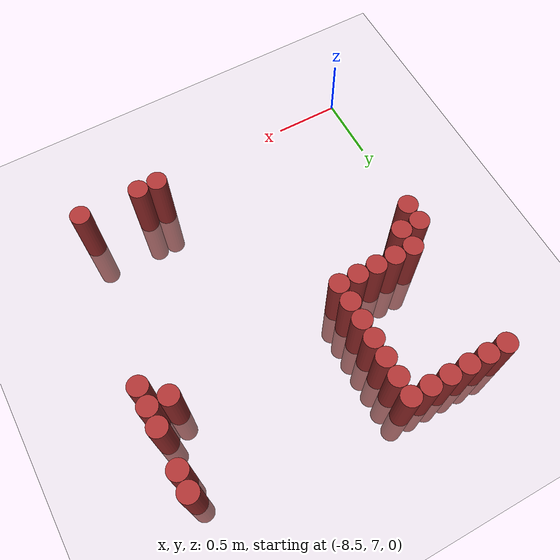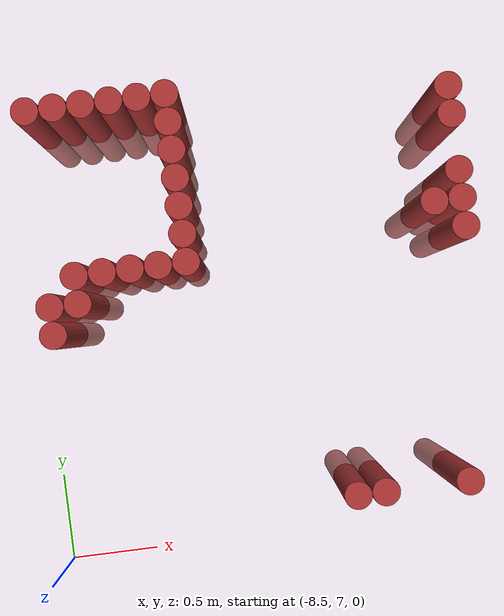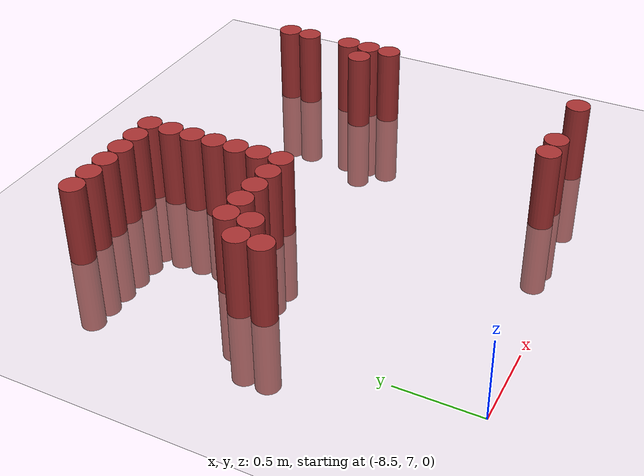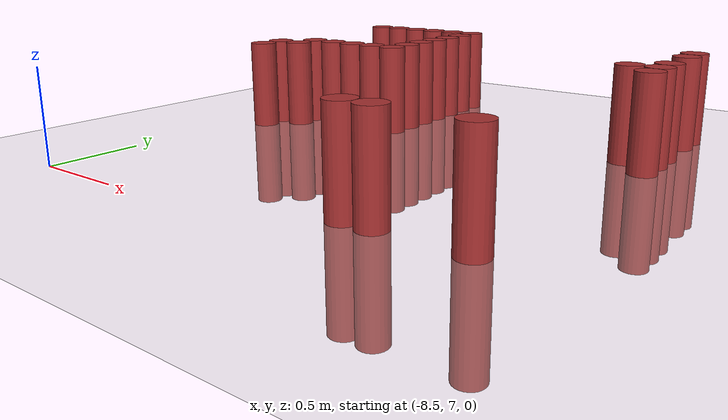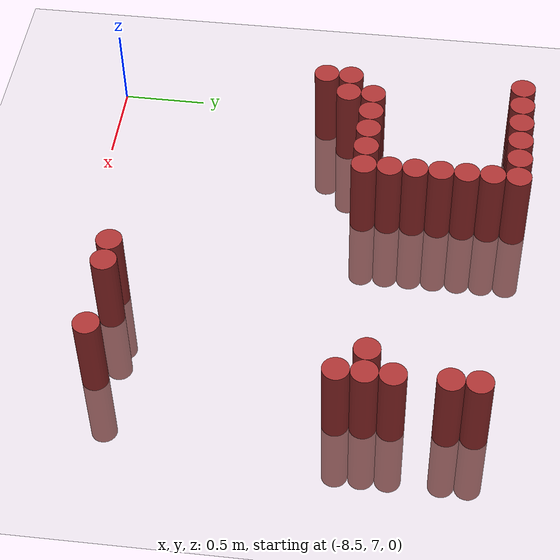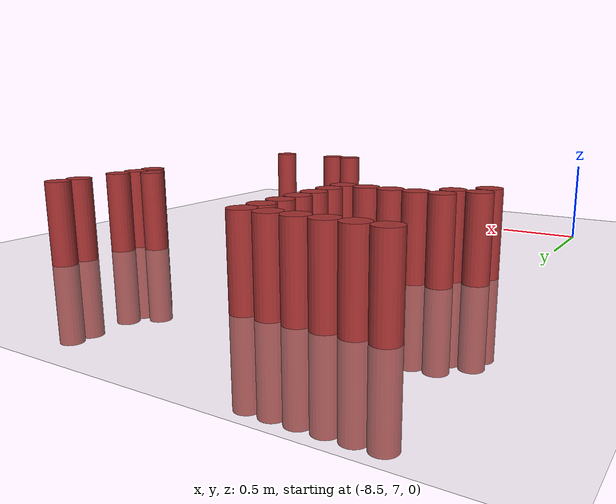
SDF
<sdf version="1.6">
 <world name="default">
  <model name="ground_plane">
   <static>1</static>
   <link name="link">
    <collision name="collision">
     <geometry><plane><normal>0 0 1</normal><size>100 100</size></plane></geometry>
     <surface><friction><ode><mu>100</mu><mu2>50</mu2></ode></friction></surface>
    </collision>
    <visual name="visual">
     <cast_shadows>0</cast_shadows>
     <geometry><plane><normal>0 0 1</normal><size>100 100</size></plane></geometry>
     <material>
      <script><uri>file://media/materials/scripts/gazebo.material</uri><name>Gazebo/Grey</name></script>
     </material>
    </visual>
   </link>
  </model>
  <model name="unit_cylinder_184">
   <static>1</static>
   <pose>-8.325000 8.325000 0.000000 0.000000 0.000000 0.000000</pose>
   <link name="link">
    <inertial>
     <mass>1</mass>
     <inertia><ixx>0.145833</ixx><ixy>0</ixy><ixz>0</ixz><iyy>0.145833</iyy><iyz>0</iyz><izz>0.125</izz></inertia>
    </inertial>
    <collision name="collision">
     <geometry><cylinder><radius>0.075000</radius><length>1</length></cylinder></geometry>
    </collision>
    <visual name="visual">
     <geometry><cylinder><radius>0.075000</radius><length>1</length></cylinder></geometry>
     <material>
      <ambient>0.648000 0.192000 0.192000 1</ambient>
      <diffuse>0.648000 0.192000 0.192000 1</diffuse>
     </material>
     <material>
      <script><name>Gazebo/Grey</name><uri>file://media/materials/scripts/gazebo.material</uri></script>
     </material>
    </visual>
   </link>
  </model>
  <model name="unit_cylinder_185">
   <static>1</static>
   <pose>-8.325000 8.475000 0.000000 0.000000 0.000000 0.000000</pose>
   <link name="link">
    <inertial>
     <mass>1</mass>
     <inertia><ixx>0.145833</ixx><ixy>0</ixy><ixz>0</ixz><iyy>0.145833</iyy><iyz>0</iyz><izz>0.125</izz></inertia>
    </inertial>
    <collision name="collision">
     <geometry><cylinder><radius>0.075000</radius><length>1</length></cylinder></geometry>
    </collision>
    <visual name="visual">
     <geometry><cylinder><radius>0.075000</radius><length>1</length></cylinder></geometry>
     <material>
      <ambient>0.648000 0.192000 0.192000 1</ambient>
      <diffuse>0.648000 0.192000 0.192000 1</diffuse>
     </material>
     <material>
      <script><name>Gazebo/Grey</name><uri>file://media/materials/scripts/gazebo.material</uri></script>
     </material>
    </visual>
   </link>
  </model>
  <model name="unit_cylinder_186">
   <static>1</static>
   <pose>-8.325000 9.525000 0.000000 0.000000 0.000000 0.000000</pose>
   <link name="link">
    <inertial>
     <mass>1</mass>
     <inertia><ixx>0.145833</ixx><ixy>0</ixy><ixz>0</ixz><iyy>0.145833</iyy><iyz>0</iyz><izz>0.125</izz></inertia>
    </inertial>
    <collision name="collision">
     <geometry><cylinder><radius>0.075000</radius><length>1</length></cylinder></geometry>
    </collision>
    <visual name="visual">
     <geometry><cylinder><radius>0.075000</radius><length>1</length></cylinder></geometry>
     <material>
      <ambient>0.648000 0.192000 0.192000 1</ambient>
      <diffuse>0.648000 0.192000 0.192000 1</diffuse>
     </material>
     <material>
      <script><name>Gazebo/Grey</name><uri>file://media/materials/scripts/gazebo.material</uri></script>
     </material>
    </visual>
   </link>
  </model>
  <model name="unit_cylinder_189">
   <static>1</static>
   <pose>-8.175000 8.475000 0.000000 0.000000 0.000000 0.000000</pose>
   <link name="link">
    <inertial>
     <mass>1</mass>
     <inertia><ixx>0.145833</ixx><ixy>0</ixy><ixz>0</ixz><iyy>0.145833</iyy><iyz>0</iyz><izz>0.125</izz></inertia>
    </inertial>
    <collision name="collision">
     <geometry><cylinder><radius>0.075000</radius><length>1</length></cylinder></geometry>
    </collision>
    <visual name="visual">
     <geometry><cylinder><radius>0.075000</radius><length>1</length></cylinder></geometry>
     <material>
      <ambient>0.648000 0.192000 0.192000 1</ambient>
      <diffuse>0.648000 0.192000 0.192000 1</diffuse>
     </material>
     <material>
      <script><name>Gazebo/Grey</name><uri>file://media/materials/scripts/gazebo.material</uri></script>
     </material>
    </visual>
   </link>
  </model>
  <model name="unit_cylinder_190">
   <static>1</static>
   <pose>-8.175000 8.625000 0.000000 0.000000 0.000000 0.000000</pose>
   <link name="link">
    <inertial>
     <mass>1</mass>
     <inertia><ixx>0.145833</ixx><ixy>0</ixy><ixz>0</ixz><iyy>0.145833</iyy><iyz>0</iyz><izz>0.125</izz></inertia>
    </inertial>
    <collision name="collision">
     <geometry><cylinder><radius>0.075000</radius><length>1</length></cylinder></geometry>
    </collision>
    <visual name="visual">
     <geometry><cylinder><radius>0.075000</radius><length>1</length></cylinder></geometry>
     <material>
      <ambient>0.648000 0.192000 0.192000 1</ambient>
      <diffuse>0.648000 0.192000 0.192000 1</diffuse>
     </material>
     <material>
      <script><name>Gazebo/Grey</name><uri>file://media/materials/scripts/gazebo.material</uri></script>
     </material>
    </visual>
   </link>
  </model>
  <model name="unit_cylinder_191">
   <static>1</static>
   <pose>-8.175000 9.525000 0.000000 0.000000 0.000000 0.000000</pose>
   <link name="link">
    <inertial>
     <mass>1</mass>
     <inertia><ixx>0.145833</ixx><ixy>0</ixy><ixz>0</ixz><iyy>0.145833</iyy><iyz>0</iyz><izz>0.125</izz></inertia>
    </inertial>
    <collision name="collision">
     <geometry><cylinder><radius>0.075000</radius><length>1</length></cylinder></geometry>
    </collision>
    <visual name="visual">
     <geometry><cylinder><radius>0.075000</radius><length>1</length></cylinder></geometry>
     <material>
      <ambient>0.648000 0.192000 0.192000 1</ambient>
      <diffuse>0.648000 0.192000 0.192000 1</diffuse>
     </material>
     <material>
      <script><name>Gazebo/Grey</name><uri>file://media/materials/scripts/gazebo.material</uri></script>
     </material>
    </visual>
   </link>
  </model>
  <model name="unit_cylinder_194">
   <static>1</static>
   <pose>-8.025000 8.625000 0.000000 0.000000 0.000000 0.000000</pose>
   <link name="link">
    <inertial>
     <mass>1</mass>
     <inertia><ixx>0.145833</ixx><ixy>0</ixy><ixz>0</ixz><iyy>0.145833</iyy><iyz>0</iyz><izz>0.125</izz></inertia>
    </inertial>
    <collision name="collision">
     <geometry><cylinder><radius>0.075000</radius><length>1</length></cylinder></geometry>
    </collision>
    <visual name="visual">
     <geometry><cylinder><radius>0.075000</radius><length>1</length></cylinder></geometry>
     <material>
      <ambient>0.648000 0.192000 0.192000 1</ambient>
      <diffuse>0.648000 0.192000 0.192000 1</diffuse>
     </material>
     <material>
      <script><name>Gazebo/Grey</name><uri>file://media/materials/scripts/gazebo.material</uri></script>
     </material>
    </visual>
   </link>
  </model>
  <model name="unit_cylinder_195">
   <static>1</static>
   <pose>-8.025000 9.525000 0.000000 0.000000 0.000000 0.000000</pose>
   <link name="link">
    <inertial>
     <mass>1</mass>
     <inertia><ixx>0.145833</ixx><ixy>0</ixy><ixz>0</ixz><iyy>0.145833</iyy><iyz>0</iyz><izz>0.125</izz></inertia>
    </inertial>
    <collision name="collision">
     <geometry><cylinder><radius>0.075000</radius><length>1</length></cylinder></geometry>
    </collision>
    <visual name="visual">
     <geometry><cylinder><radius>0.075000</radius><length>1</length></cylinder></geometry>
     <material>
      <ambient>0.648000 0.192000 0.192000 1</ambient>
      <diffuse>0.648000 0.192000 0.192000 1</diffuse>
     </material>
     <material>
      <script><name>Gazebo/Grey</name><uri>file://media/materials/scripts/gazebo.material</uri></script>
     </material>
    </visual>
   </link>
  </model>
  <model name="unit_cylinder_196">
   <static>1</static>
   <pose>-7.875000 8.625000 0.000000 0.000000 0.000000 0.000000</pose>
   <link name="link">
    <inertial>
     <mass>1</mass>
     <inertia><ixx>0.145833</ixx><ixy>0</ixy><ixz>0</ixz><iyy>0.145833</iyy><iyz>0</iyz><izz>0.125</izz></inertia>
    </inertial>
    <collision name="collision">
     <geometry><cylinder><radius>0.075000</radius><length>1</length></cylinder></geometry>
    </collision>
    <visual name="visual">
     <geometry><cylinder><radius>0.075000</radius><length>1</length></cylinder></geometry>
     <material>
      <ambient>0.648000 0.192000 0.192000 1</ambient>
      <diffuse>0.648000 0.192000 0.192000 1</diffuse>
     </material>
     <material>
      <script><name>Gazebo/Grey</name><uri>file://media/materials/scripts/gazebo.material</uri></script>
     </material>
    </visual>
   </link>
  </model>
  <model name="unit_cylinder_197">
   <static>1</static>
   <pose>-7.875000 9.525000 0.000000 0.000000 0.000000 0.000000</pose>
   <link name="link">
    <inertial>
     <mass>1</mass>
     <inertia><ixx>0.145833</ixx><ixy>0</ixy><ixz>0</ixz><iyy>0.145833</iyy><iyz>0</iyz><izz>0.125</izz></inertia>
    </inertial>
    <collision name="collision">
     <geometry><cylinder><radius>0.075000</radius><length>1</length></cylinder></geometry>
    </collision>
    <visual name="visual">
     <geometry><cylinder><radius>0.075000</radius><length>1</length></cylinder></geometry>
     <material>
      <ambient>0.648000 0.192000 0.192000 1</ambient>
      <diffuse>0.648000 0.192000 0.192000 1</diffuse>
     </material>
     <material>
      <script><name>Gazebo/Grey</name><uri>file://media/materials/scripts/gazebo.material</uri></script>
     </material>
    </visual>
   </link>
  </model>
  <model name="unit_cylinder_198">
   <static>1</static>
   <pose>-7.725000 8.625000 0.000000 0.000000 0.000000 0.000000</pose>
   <link name="link">
    <inertial>
     <mass>1</mass>
     <inertia><ixx>0.145833</ixx><ixy>0</ixy><ixz>0</ixz><iyy>0.145833</iyy><iyz>0</iyz><izz>0.125</izz></inertia>
    </inertial>
    <collision name="collision">
     <geometry><cylinder><radius>0.075000</radius><length>1</length></cylinder></geometry>
    </collision>
    <visual name="visual">
     <geometry><cylinder><radius>0.075000</radius><length>1</length></cylinder></geometry>
     <material>
      <ambient>0.648000 0.192000 0.192000 1</ambient>
      <diffuse>0.648000 0.192000 0.192000 1</diffuse>
     </material>
     <material>
      <script><name>Gazebo/Grey</name><uri>file://media/materials/scripts/gazebo.material</uri></script>
     </material>
    </visual>
   </link>
  </model>
  <model name="unit_cylinder_199">
   <static>1</static>
   <pose>-7.725000 9.525000 0.000000 0.000000 0.000000 0.000000</pose>
   <link name="link">
    <inertial>
     <mass>1</mass>
     <inertia><ixx>0.145833</ixx><ixy>0</ixy><ixz>0</ixz><iyy>0.145833</iyy><iyz>0</iyz><izz>0.125</izz></inertia>
    </inertial>
    <collision name="collision">
     <geometry><cylinder><radius>0.075000</radius><length>1</length></cylinder></geometry>
    </collision>
    <visual name="visual">
     <geometry><cylinder><radius>0.075000</radius><length>1</length></cylinder></geometry>
     <material>
      <ambient>0.648000 0.192000 0.192000 1</ambient>
      <diffuse>0.648000 0.192000 0.192000 1</diffuse>
     </material>
     <material>
      <script><name>Gazebo/Grey</name><uri>file://media/materials/scripts/gazebo.material</uri></script>
     </material>
    </visual>
   </link>
  </model>
  <model name="unit_cylinder_200">
   <static>1</static>
   <pose>-7.575000 8.625000 0.000000 0.000000 0.000000 0.000000</pose>
   <link name="link">
    <inertial>
     <mass>1</mass>
     <inertia><ixx>0.145833</ixx><ixy>0</ixy><ixz>0</ixz><iyy>0.145833</iyy><iyz>0</iyz><izz>0.125</izz></inertia>
    </inertial>
    <collision name="collision">
     <geometry><cylinder><radius>0.075000</radius><length>1</length></cylinder></geometry>
    </collision>
    <visual name="visual">
     <geometry><cylinder><radius>0.075000</radius><length>1</length></cylinder></geometry>
     <material>
      <ambient>0.648000 0.192000 0.192000 1</ambient>
      <diffuse>0.648000 0.192000 0.192000 1</diffuse>
     </material>
     <material>
      <script><name>Gazebo/Grey</name><uri>file://media/materials/scripts/gazebo.material</uri></script>
     </material>
    </visual>
   </link>
  </model>
  <model name="unit_cylinder_201">
   <static>1</static>
   <pose>-7.575000 8.775000 0.000000 0.000000 0.000000 0.000000</pose>
   <link name="link">
    <inertial>
     <mass>1</mass>
     <inertia><ixx>0.145833</ixx><ixy>0</ixy><ixz>0</ixz><iyy>0.145833</iyy><iyz>0</iyz><izz>0.125</izz></inertia>
    </inertial>
    <collision name="collision">
     <geometry><cylinder><radius>0.075000</radius><length>1</length></cylinder></geometry>
    </collision>
    <visual name="visual">
     <geometry><cylinder><radius>0.075000</radius><length>1</length></cylinder></geometry>
     <material>
      <ambient>0.648000 0.192000 0.192000 1</ambient>
      <diffuse>0.648000 0.192000 0.192000 1</diffuse>
     </material>
     <material>
      <script><name>Gazebo/Grey</name><uri>file://media/materials/scripts/gazebo.material</uri></script>
     </material>
    </visual>
   </link>
  </model>
  <model name="unit_cylinder_202">
   <static>1</static>
   <pose>-7.575000 8.925000 0.000000 0.000000 0.000000 0.000000</pose>
   <link name="link">
    <inertial>
     <mass>1</mass>
     <inertia><ixx>0.145833</ixx><ixy>0</ixy><ixz>0</ixz><iyy>0.145833</iyy><iyz>0</iyz><izz>0.125</izz></inertia>
    </inertial>
    <collision name="collision">
     <geometry><cylinder><radius>0.075000</radius><length>1</length></cylinder></geometry>
    </collision>
    <visual name="visual">
     <geometry><cylinder><radius>0.075000</radius><length>1</length></cylinder></geometry>
     <material>
      <ambient>0.648000 0.192000 0.192000 1</ambient>
      <diffuse>0.648000 0.192000 0.192000 1</diffuse>
     </material>
     <material>
      <script><name>Gazebo/Grey</name><uri>file://media/materials/scripts/gazebo.material</uri></script>
     </material>
    </visual>
   </link>
  </model>
  <model name="unit_cylinder_203">
   <static>1</static>
   <pose>-7.575000 9.075000 0.000000 0.000000 0.000000 0.000000</pose>
   <link name="link">
    <inertial>
     <mass>1</mass>
     <inertia><ixx>0.145833</ixx><ixy>0</ixy><ixz>0</ixz><iyy>0.145833</iyy><iyz>0</iyz><izz>0.125</izz></inertia>
    </inertial>
    <collision name="collision">
     <geometry><cylinder><radius>0.075000</radius><length>1</length></cylinder></geometry>
    </collision>
    <visual name="visual">
     <geometry><cylinder><radius>0.075000</radius><length>1</length></cylinder></geometry>
     <material>
      <ambient>0.648000 0.192000 0.192000 1</ambient>
      <diffuse>0.648000 0.192000 0.192000 1</diffuse>
     </material>
     <material>
      <script><name>Gazebo/Grey</name><uri>file://media/materials/scripts/gazebo.material</uri></script>
     </material>
    </visual>
   </link>
  </model>
  <model name="unit_cylinder_204">
   <static>1</static>
   <pose>-7.575000 9.225000 0.000000 0.000000 0.000000 0.000000</pose>
   <link name="link">
    <inertial>
     <mass>1</mass>
     <inertia><ixx>0.145833</ixx><ixy>0</ixy><ixz>0</ixz><iyy>0.145833</iyy><iyz>0</iyz><izz>0.125</izz></inertia>
    </inertial>
    <collision name="collision">
     <geometry><cylinder><radius>0.075000</radius><length>1</length></cylinder></geometry>
    </collision>
    <visual name="visual">
     <geometry><cylinder><radius>0.075000</radius><length>1</length></cylinder></geometry>
     <material>
      <ambient>0.648000 0.192000 0.192000 1</ambient>
      <diffuse>0.648000 0.192000 0.192000 1</diffuse>
     </material>
     <material>
      <script><name>Gazebo/Grey</name><uri>file://media/materials/scripts/gazebo.material</uri></script>
     </material>
    </visual>
   </link>
  </model>
  <model name="unit_cylinder_205">
   <static>1</static>
   <pose>-7.575000 9.375000 0.000000 0.000000 0.000000 0.000000</pose>
   <link name="link">
    <inertial>
     <mass>1</mass>
     <inertia><ixx>0.145833</ixx><ixy>0</ixy><ixz>0</ixz><iyy>0.145833</iyy><iyz>0</iyz><izz>0.125</izz></inertia>
    </inertial>
    <collision name="collision">
     <geometry><cylinder><radius>0.075000</radius><length>1</length></cylinder></geometry>
    </collision>
    <visual name="visual">
     <geometry><cylinder><radius>0.075000</radius><length>1</length></cylinder></geometry>
     <material>
      <ambient>0.648000 0.192000 0.192000 1</ambient>
      <diffuse>0.648000 0.192000 0.192000 1</diffuse>
     </material>
     <material>
      <script><name>Gazebo/Grey</name><uri>file://media/materials/scripts/gazebo.material</uri></script>
     </material>
    </visual>
   </link>
  </model>
  <model name="unit_cylinder_206">
   <static>1</static>
   <pose>-7.575000 9.525000 0.000000 0.000000 0.000000 0.000000</pose>
   <link name="link">
    <inertial>
     <mass>1</mass>
     <inertia><ixx>0.145833</ixx><ixy>0</ixy><ixz>0</ixz><iyy>0.145833</iyy><iyz>0</iyz><izz>0.125</izz></inertia>
    </inertial>
    <collision name="collision">
     <geometry><cylinder><radius>0.075000</radius><length>1</length></cylinder></geometry>
    </collision>
    <visual name="visual">
     <geometry><cylinder><radius>0.075000</radius><length>1</length></cylinder></geometry>
     <material>
      <ambient>0.648000 0.192000 0.192000 1</ambient>
      <diffuse>0.648000 0.192000 0.192000 1</diffuse>
     </material>
     <material>
      <script><name>Gazebo/Grey</name><uri>file://media/materials/scripts/gazebo.material</uri></script>
     </material>
    </visual>
   </link>
  </model>
  <model name="unit_cylinder_215">
   <static>1</static>
   <pose>-6.825000 7.275000 0.000000 0.000000 0.000000 0.000000</pose>
   <link name="link">
    <inertial>
     <mass>1</mass>
     <inertia><ixx>0.145833</ixx><ixy>0</ixy><ixz>0</ixz><iyy>0.145833</iyy><iyz>0</iyz><izz>0.125</izz></inertia>
    </inertial>
    <collision name="collision">
     <geometry><cylinder><radius>0.075000</radius><length>1</length></cylinder></geometry>
    </collision>
    <visual name="visual">
     <geometry><cylinder><radius>0.075000</radius><length>1</length></cylinder></geometry>
     <material>
      <ambient>0.648000 0.192000 0.192000 1</ambient>
      <diffuse>0.648000 0.192000 0.192000 1</diffuse>
     </material>
     <material>
      <script><name>Gazebo/Grey</name><uri>file://media/materials/scripts/gazebo.material</uri></script>
     </material>
    </visual>
   </link>
  </model>
  <model name="unit_cylinder_219">
   <static>1</static>
   <pose>-6.675000 7.275000 0.000000 0.000000 0.000000 0.000000</pose>
   <link name="link">
    <inertial>
     <mass>1</mass>
     <inertia><ixx>0.145833</ixx><ixy>0</ixy><ixz>0</ixz><iyy>0.145833</iyy><iyz>0</iyz><izz>0.125</izz></inertia>
    </inertial>
    <collision name="collision">
     <geometry><cylinder><radius>0.075000</radius><length>1</length></cylinder></geometry>
    </collision>
    <visual name="visual">
     <geometry><cylinder><radius>0.075000</radius><length>1</length></cylinder></geometry>
     <material>
      <ambient>0.648000 0.192000 0.192000 1</ambient>
      <diffuse>0.648000 0.192000 0.192000 1</diffuse>
     </material>
     <material>
      <script><name>Gazebo/Grey</name><uri>file://media/materials/scripts/gazebo.material</uri></script>
     </material>
    </visual>
   </link>
  </model>
  <model name="unit_cylinder_231">
   <static>1</static>
   <pose>-6.225000 7.275000 0.000000 0.000000 0.000000 0.000000</pose>
   <link name="link">
    <inertial>
     <mass>1</mass>
     <inertia><ixx>0.145833</ixx><ixy>0</ixy><ixz>0</ixz><iyy>0.145833</iyy><iyz>0</iyz><izz>0.125</izz></inertia>
    </inertial>
    <collision name="collision">
     <geometry><cylinder><radius>0.075000</radius><length>1</length></cylinder></geometry>
    </collision>
    <visual name="visual">
     <geometry><cylinder><radius>0.075000</radius><length>1</length></cylinder></geometry>
     <material>
      <ambient>0.648000 0.192000 0.192000 1</ambient>
      <diffuse>0.648000 0.192000 0.192000 1</diffuse>
     </material>
     <material>
      <script><name>Gazebo/Grey</name><uri>file://media/materials/scripts/gazebo.material</uri></script>
     </material>
    </visual>
   </link>
  </model>
  <model name="unit_cylinder_232">
   <static>1</static>
   <pose>-6.225000 8.775000 0.000000 0.000000 0.000000 0.000000</pose>
   <link name="link">
    <inertial>
     <mass>1</mass>
     <inertia><ixx>0.145833</ixx><ixy>0</ixy><ixz>0</ixz><iyy>0.145833</iyy><iyz>0</iyz><izz>0.125</izz></inertia>
    </inertial>
    <collision name="collision">
     <geometry><cylinder><radius>0.075000</radius><length>1</length></cylinder></geometry>
    </collision>
    <visual name="visual">
     <geometry><cylinder><radius>0.075000</radius><length>1</length></cylinder></geometry>
     <material>
      <ambient>0.648000 0.192000 0.192000 1</ambient>
      <diffuse>0.648000 0.192000 0.192000 1</diffuse>
     </material>
     <material>
      <script><name>Gazebo/Grey</name><uri>file://media/materials/scripts/gazebo.material</uri></script>
     </material>
    </visual>
   </link>
  </model>
  <model name="unit_cylinder_238">
   <static>1</static>
   <pose>-6.075000 8.625000 0.000000 0.000000 0.000000 0.000000</pose>
   <link name="link">
    <inertial>
     <mass>1</mass>
     <inertia><ixx>0.145833</ixx><ixy>0</ixy><ixz>0</ixz><iyy>0.145833</iyy><iyz>0</iyz><izz>0.125</izz></inertia>
    </inertial>
    <collision name="collision">
     <geometry><cylinder><radius>0.075000</radius><length>1</length></cylinder></geometry>
    </collision>
    <visual name="visual">
     <geometry><cylinder><radius>0.075000</radius><length>1</length></cylinder></geometry>
     <material>
      <ambient>0.648000 0.192000 0.192000 1</ambient>
      <diffuse>0.648000 0.192000 0.192000 1</diffuse>
     </material>
     <material>
      <script><name>Gazebo/Grey</name><uri>file://media/materials/scripts/gazebo.material</uri></script>
     </material>
    </visual>
   </link>
  </model>
  <model name="unit_cylinder_239">
   <static>1</static>
   <pose>-6.075000 8.775000 0.000000 0.000000 0.000000 0.000000</pose>
   <link name="link">
    <inertial>
     <mass>1</mass>
     <inertia><ixx>0.145833</ixx><ixy>0</ixy><ixz>0</ixz><iyy>0.145833</iyy><iyz>0</iyz><izz>0.125</izz></inertia>
    </inertial>
    <collision name="collision">
     <geometry><cylinder><radius>0.075000</radius><length>1</length></cylinder></geometry>
    </collision>
    <visual name="visual">
     <geometry><cylinder><radius>0.075000</radius><length>1</length></cylinder></geometry>
     <material>
      <ambient>0.648000 0.192000 0.192000 1</ambient>
      <diffuse>0.648000 0.192000 0.192000 1</diffuse>
     </material>
     <material>
      <script><name>Gazebo/Grey</name><uri>file://media/materials/scripts/gazebo.material</uri></script>
     </material>
    </visual>
   </link>
  </model>
  <model name="unit_cylinder_240">
   <static>1</static>
   <pose>-6.075000 8.925000 0.000000 0.000000 0.000000 0.000000</pose>
   <link name="link">
    <inertial>
     <mass>1</mass>
     <inertia><ixx>0.145833</ixx><ixy>0</ixy><ixz>0</ixz><iyy>0.145833</iyy><iyz>0</iyz><izz>0.125</izz></inertia>
    </inertial>
    <collision name="collision">
     <geometry><cylinder><radius>0.075000</radius><length>1</length></cylinder></geometry>
    </collision>
    <visual name="visual">
     <geometry><cylinder><radius>0.075000</radius><length>1</length></cylinder></geometry>
     <material>
      <ambient>0.648000 0.192000 0.192000 1</ambient>
      <diffuse>0.648000 0.192000 0.192000 1</diffuse>
     </material>
     <material>
      <script><name>Gazebo/Grey</name><uri>file://media/materials/scripts/gazebo.material</uri></script>
     </material>
    </visual>
   </link>
  </model>
  <model name="unit_cylinder_241">
   <static>1</static>
   <pose>-6.075000 9.225000 0.000000 0.000000 0.000000 0.000000</pose>
   <link name="link">
    <inertial>
     <mass>1</mass>
     <inertia><ixx>0.145833</ixx><ixy>0</ixy><ixz>0</ixz><iyy>0.145833</iyy><iyz>0</iyz><izz>0.125</izz></inertia>
    </inertial>
    <collision name="collision">
     <geometry><cylinder><radius>0.075000</radius><length>1</length></cylinder></geometry>
    </collision>
    <visual name="visual">
     <geometry><cylinder><radius>0.075000</radius><length>1</length></cylinder></geometry>
     <material>
      <ambient>0.648000 0.192000 0.192000 1</ambient>
      <diffuse>0.648000 0.192000 0.192000 1</diffuse>
     </material>
     <material>
      <script><name>Gazebo/Grey</name><uri>file://media/materials/scripts/gazebo.material</uri></script>
     </material>
    </visual>
   </link>
  </model>
  <model name="unit_cylinder_242">
   <static>1</static>
   <pose>-6.075000 9.375000 0.000000 0.000000 0.000000 0.000000</pose>
   <link name="link">
    <inertial>
     <mass>1</mass>
     <inertia><ixx>0.145833</ixx><ixy>0</ixy><ixz>0</ixz><iyy>0.145833</iyy><iyz>0</iyz><izz>0.125</izz></inertia>
    </inertial>
    <collision name="collision">
     <geometry><cylinder><radius>0.075000</radius><length>1</length></cylinder></geometry>
    </collision>
    <visual name="visual">
     <geometry><cylinder><radius>0.075000</radius><length>1</length></cylinder></geometry>
     <material>
      <ambient>0.648000 0.192000 0.192000 1</ambient>
      <diffuse>0.648000 0.192000 0.192000 1</diffuse>
     </material>
     <material>
      <script><name>Gazebo/Grey</name><uri>file://media/materials/scripts/gazebo.material</uri></script>
     </material>
    </visual>
   </link>
  </model>
 </world>
</sdf>
